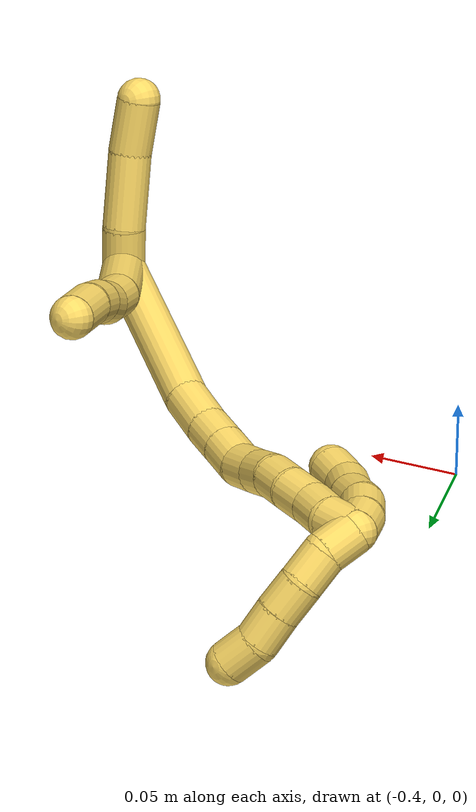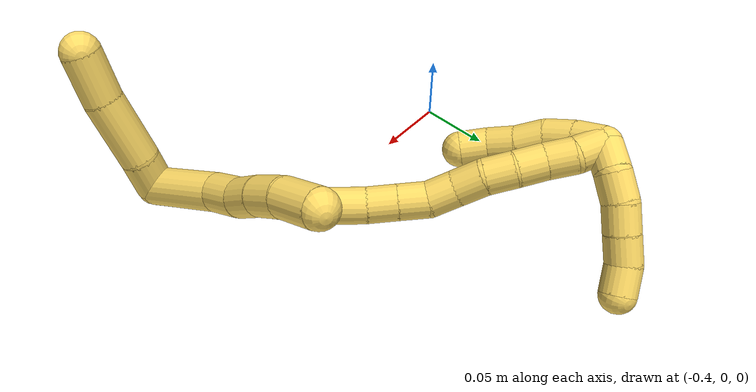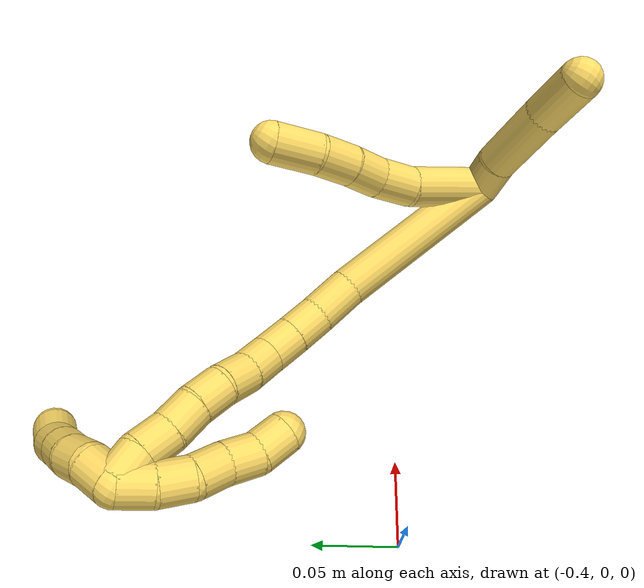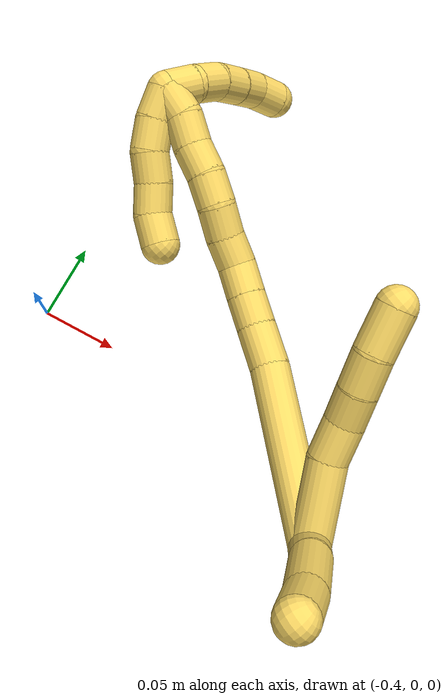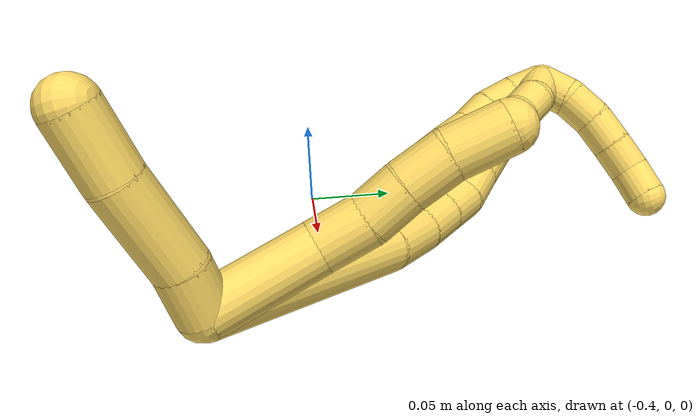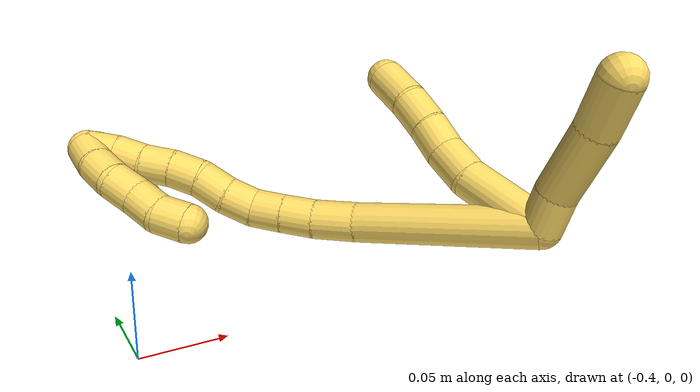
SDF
<sdf version="1.7">
 <world name="default">
  <model name="5">
   <static>0</static>
   <link name="5">
    <collision name="collision-cylinder-e_1_2_8">
     <pose>-0.01249 0.01104 0.020462 -0.494801 -0.492971 0.126926</pose>
     <geometry><cylinder><radius>0.0125</radius><length>0.052785</length></cylinder></geometry>
     <surface>
      <friction><ode><mu>1.16</mu><mu2>1.16</mu2><slip1>0</slip1><slip2>0</slip2></ode></friction>
      <contact><ode><kp>1e+06</kp><kd>1</kd><max_vel>0</max_vel><min_depth>0.001</min_depth></ode></contact>
     </surface>
    </collision>
    <visual name="visual-cylinder-e_1_2_8">
     <pose>-0.01249 0.01104 0.020462 -0.494801 -0.492971 0.126926</pose>
     <geometry><cylinder><radius>0.0125</radius><length>0.052785</length></cylinder></geometry>
     <material><ambient>1 0.858824 0.4 1</ambient></material>
    </visual>
    <collision name="collision-cylinder-e_2_8_9">
     <pose>-0.029753 0.024809 0.051795 -0.245873 -0.402513 0.050406</pose>
     <geometry><cylinder><radius>0.0125</radius><length>0.024365</length></cylinder></geometry>
     <surface>
      <friction><ode><mu>1.16</mu><mu2>1.16</mu2><slip1>0</slip1><slip2>0</slip2></ode></friction>
      <contact><ode><kp>1e+06</kp><kd>1</kd><max_vel>0</max_vel><min_depth>0.001</min_depth></ode></contact>
     </surface>
    </collision>
    <visual name="visual-cylinder-e_2_8_9">
     <pose>-0.029753 0.024809 0.051795 -0.245873 -0.402513 0.050406</pose>
     <geometry><cylinder><radius>0.0125</radius><length>0.024365</length></cylinder></geometry>
     <material><ambient>1 0.858824 0.4 1</ambient></material>
    </visual>
    <collision name="collision-cylinder-e_3_9_10">
     <pose>-0.040121 0.028317 0.071604 -0.086969 -0.557697 0.024914</pose>
     <geometry><cylinder><radius>0.0125</radius><length>0.021147</length></cylinder></geometry>
     <surface>
      <friction><ode><mu>1.16</mu><mu2>1.16</mu2><slip1>0</slip1><slip2>0</slip2></ode></friction>
      <contact><ode><kp>1e+06</kp><kd>1</kd><max_vel>0</max_vel><min_depth>0.001</min_depth></ode></contact>
     </surface>
    </collision>
    <visual name="visual-cylinder-e_3_9_10">
     <pose>-0.040121 0.028317 0.071604 -0.086969 -0.557697 0.024914</pose>
     <geometry><cylinder><radius>0.0125</radius><length>0.021147</length></cylinder></geometry>
     <material><ambient>1 0.858824 0.4 1</ambient></material>
    </visual>
    <collision name="collision-cylinder-e_4_10_11">
     <pose>-0.051135 0.030827 0.090438 -0.173141 -0.494584 0.043814</pose>
     <geometry><cylinder><radius>0.0125</radius><length>0.02283</length></cylinder></geometry>
     <surface>
      <friction><ode><mu>1.16</mu><mu2>1.16</mu2><slip1>0</slip1><slip2>0</slip2></ode></friction>
      <contact><ode><kp>1e+06</kp><kd>1</kd><max_vel>0</max_vel><min_depth>0.001</min_depth></ode></contact>
     </surface>
    </collision>
    <visual name="visual-cylinder-e_4_10_11">
     <pose>-0.051135 0.030827 0.090438 -0.173141 -0.494584 0.043814</pose>
     <geometry><cylinder><radius>0.0125</radius><length>0.02283</length></cylinder></geometry>
     <material><ambient>1 0.858824 0.4 1</ambient></material>
    </visual>
    <collision name="collision-cylinder-e_5_11_6">
     <pose>-0.061322 0.036363 0.113419 -0.28301 -0.336666 0.048409</pose>
     <geometry><cylinder><radius>0.0125</radius><length>0.028874</length></cylinder></geometry>
     <surface>
      <friction><ode><mu>1.16</mu><mu2>1.16</mu2><slip1>0</slip1><slip2>0</slip2></ode></friction>
      <contact><ode><kp>1e+06</kp><kd>1</kd><max_vel>0</max_vel><min_depth>0.001</min_depth></ode></contact>
     </surface>
    </collision>
    <visual name="visual-cylinder-e_5_11_6">
     <pose>-0.061322 0.036363 0.113419 -0.28301 -0.336666 0.048409</pose>
     <geometry><cylinder><radius>0.0125</radius><length>0.028874</length></cylinder></geometry>
     <material><ambient>1 0.858824 0.4 1</ambient></material>
    </visual>
    <collision name="collision-cylinder-e_1_2_12">
     <pose>-0.007261 -0.009607 0.001376 1.42855 -0.642336 -0.561627</pose>
     <geometry><cylinder><radius>0.0125</radius><length>0.024241</length></cylinder></geometry>
     <surface>
      <friction><ode><mu>1.16</mu><mu2>1.16</mu2><slip1>0</slip1><slip2>0</slip2></ode></friction>
      <contact><ode><kp>1e+06</kp><kd>1</kd><max_vel>0</max_vel><min_depth>0.001</min_depth></ode></contact>
     </surface>
    </collision>
    <visual name="visual-cylinder-e_1_2_12">
     <pose>-0.007261 -0.009607 0.001376 1.42855 -0.642336 -0.561627</pose>
     <geometry><cylinder><radius>0.0125</radius><length>0.024241</length></cylinder></geometry>
     <material><ambient>1 0.858824 0.4 1</ambient></material>
    </visual>
    <collision name="collision-cylinder-e_2_12_13">
     <pose>-0.026972 -0.037403 0.001861 1.61971 -0.599679 -0.627858</pose>
     <geometry><cylinder><radius>0.0125</radius><length>0.044119</length></cylinder></geometry>
     <surface>
      <friction><ode><mu>1.16</mu><mu2>1.16</mu2><slip1>0</slip1><slip2>0</slip2></ode></friction>
      <contact><ode><kp>1e+06</kp><kd>1</kd><max_vel>0</max_vel><min_depth>0.001</min_depth></ode></contact>
     </surface>
    </collision>
    <visual name="visual-cylinder-e_2_12_13">
     <pose>-0.026972 -0.037403 0.001861 1.61971 -0.599679 -0.627858</pose>
     <geometry><cylinder><radius>0.0125</radius><length>0.044119</length></cylinder></geometry>
     <material><ambient>1 0.858824 0.4 1</ambient></material>
    </visual>
    <collision name="collision-cylinder-e_3_13_5">
     <pose>-0.049837 -0.067488 0.000474 1.61251 -0.718675 -0.746577</pose>
     <geometry><cylinder><radius>0.0125</radius><length>0.03164</length></cylinder></geometry>
     <surface>
      <friction><ode><mu>1.16</mu><mu2>1.16</mu2><slip1>0</slip1><slip2>0</slip2></ode></friction>
      <contact><ode><kp>1e+06</kp><kd>1</kd><max_vel>0</max_vel><min_depth>0.001</min_depth></ode></contact>
     </surface>
    </collision>
    <visual name="visual-cylinder-e_3_13_5">
     <pose>-0.049837 -0.067488 0.000474 1.61251 -0.718675 -0.746577</pose>
     <geometry><cylinder><radius>0.0125</radius><length>0.03164</length></cylinder></geometry>
     <material><ambient>1 0.858824 0.4 1</ambient></material>
    </visual>
    <collision name="collision-cylinder-e_1_2_14">
     <pose>-0.021822 0.046764 0.020359 -1.16019 -0.404278 0.266996</pose>
     <geometry><cylinder><radius>0.0125</radius><length>0.110951</length></cylinder></geometry>
     <surface>
      <friction><ode><mu>1.16</mu><mu2>1.16</mu2><slip1>0</slip1><slip2>0</slip2></ode></friction>
      <contact><ode><kp>1e+06</kp><kd>1</kd><max_vel>0</max_vel><min_depth>0.001</min_depth></ode></contact>
     </surface>
    </collision>
    <visual name="visual-cylinder-e_1_2_14">
     <pose>-0.021822 0.046764 0.020359 -1.16019 -0.404278 0.266996</pose>
     <geometry><cylinder><radius>0.0125</radius><length>0.110951</length></cylinder></geometry>
     <material><ambient>1 0.858824 0.4 1</ambient></material>
    </visual>
    <collision name="collision-cylinder-e_2_14_15">
     <pose>-0.050669 0.104534 0.044887 -1.20864 -0.538186 0.376349</pose>
     <geometry><cylinder><radius>0.0125</radius><length>0.027414</length></cylinder></geometry>
     <surface>
      <friction><ode><mu>1.16</mu><mu2>1.16</mu2><slip1>0</slip1><slip2>0</slip2></ode></friction>
      <contact><ode><kp>1e+06</kp><kd>1</kd><max_vel>0</max_vel><min_depth>0.001</min_depth></ode></contact>
     </surface>
    </collision>
    <visual name="visual-cylinder-e_2_14_15">
     <pose>-0.050669 0.104534 0.044887 -1.20864 -0.538186 0.376349</pose>
     <geometry><cylinder><radius>0.0125</radius><length>0.027414</length></cylinder></geometry>
     <material><ambient>1 0.858824 0.4 1</ambient></material>
    </visual>
    <collision name="collision-cylinder-e_3_15_16">
     <pose>-0.063849 0.123202 0.052542 -1.14392 -0.631307 0.414417</pose>
     <geometry><cylinder><radius>0.0125</radius><length>0.020852</length></cylinder></geometry>
     <surface>
      <friction><ode><mu>1.16</mu><mu2>1.16</mu2><slip1>0</slip1><slip2>0</slip2></ode></friction>
      <contact><ode><kp>1e+06</kp><kd>1</kd><max_vel>0</max_vel><min_depth>0.001</min_depth></ode></contact>
     </surface>
    </collision>
    <visual name="visual-cylinder-e_3_15_16">
     <pose>-0.063849 0.123202 0.052542 -1.14392 -0.631307 0.414417</pose>
     <geometry><cylinder><radius>0.0125</radius><length>0.020852</length></cylinder></geometry>
     <material><ambient>1 0.858824 0.4 1</ambient></material>
    </visual>
    <collision name="collision-cylinder-e_4_16_17">
     <pose>-0.07606 0.138307 0.059645 -1.11836 -0.631787 0.403511</pose>
     <geometry><cylinder><radius>0.0125</radius><length>0.020514</length></cylinder></geometry>
     <surface>
      <friction><ode><mu>1.16</mu><mu2>1.16</mu2><slip1>0</slip1><slip2>0</slip2></ode></friction>
      <contact><ode><kp>1e+06</kp><kd>1</kd><max_vel>0</max_vel><min_depth>0.001</min_depth></ode></contact>
     </surface>
    </collision>
    <visual name="visual-cylinder-e_4_16_17">
     <pose>-0.07606 0.138307 0.059645 -1.11836 -0.631787 0.403511</pose>
     <geometry><cylinder><radius>0.0125</radius><length>0.020514</length></cylinder></geometry>
     <material><ambient>1 0.858824 0.4 1</ambient></material>
    </visual>
    <collision name="collision-cylinder-e_5_17_18">
     <pose>-0.090286 0.150542 0.066484 -0.978869 -0.955627 0.538277</pose>
     <geometry><cylinder><radius>0.0125</radius><length>0.020005</length></cylinder></geometry>
     <surface>
      <friction><ode><mu>1.16</mu><mu2>1.16</mu2><slip1>0</slip1><slip2>0</slip2></ode></friction>
      <contact><ode><kp>1e+06</kp><kd>1</kd><max_vel>0</max_vel><min_depth>0.001</min_depth></ode></contact>
     </surface>
    </collision>
    <visual name="visual-cylinder-e_5_17_18">
     <pose>-0.090286 0.150542 0.066484 -0.978869 -0.955627 0.538277</pose>
     <geometry><cylinder><radius>0.0125</radius><length>0.020005</length></cylinder></geometry>
     <material><ambient>1 0.858824 0.4 1</ambient></material>
    </visual>
    <collision name="collision-cylinder-e_6_18_19">
     <pose>-0.106748 0.15915 0.07409 -0.716465 -0.959284 0.384664</pose>
     <geometry><cylinder><radius>0.0125</radius><length>0.020256</length></cylinder></geometry>
     <surface>
      <friction><ode><mu>1.16</mu><mu2>1.16</mu2><slip1>0</slip1><slip2>0</slip2></ode></friction>
      <contact><ode><kp>1e+06</kp><kd>1</kd><max_vel>0</max_vel><min_depth>0.001</min_depth></ode></contact>
     </surface>
    </collision>
    <visual name="visual-cylinder-e_6_18_19">
     <pose>-0.106748 0.15915 0.07409 -0.716465 -0.959284 0.384664</pose>
     <geometry><cylinder><radius>0.0125</radius><length>0.020256</length></cylinder></geometry>
     <material><ambient>1 0.858824 0.4 1</ambient></material>
    </visual>
    <collision name="collision-cylinder-e_7_19_20">
     <pose>-0.122251 0.16884 0.082158 -1.0105 -0.805191 0.46268</pose>
     <geometry><cylinder><radius>0.0125</radius><length>0.020003</length></cylinder></geometry>
     <surface>
      <friction><ode><mu>1.16</mu><mu2>1.16</mu2><slip1>0</slip1><slip2>0</slip2></ode></friction>
      <contact><ode><kp>1e+06</kp><kd>1</kd><max_vel>0</max_vel><min_depth>0.001</min_depth></ode></contact>
     </surface>
    </collision>
    <visual name="visual-cylinder-e_7_19_20">
     <pose>-0.122251 0.16884 0.082158 -1.0105 -0.805191 0.46268</pose>
     <geometry><cylinder><radius>0.0125</radius><length>0.020003</length></cylinder></geometry>
     <material><ambient>1 0.858824 0.4 1</ambient></material>
    </visual>
    <collision name="collision-cylinder-e_8_20_21">
     <pose>-0.136483 0.181443 0.088167 -1.23815 -0.778226 0.568468</pose>
     <geometry><cylinder><radius>0.0125</radius><length>0.020004</length></cylinder></geometry>
     <surface>
      <friction><ode><mu>1.16</mu><mu2>1.16</mu2><slip1>0</slip1><slip2>0</slip2></ode></friction>
      <contact><ode><kp>1e+06</kp><kd>1</kd><max_vel>0</max_vel><min_depth>0.001</min_depth></ode></contact>
     </surface>
    </collision>
    <visual name="visual-cylinder-e_8_20_21">
     <pose>-0.136483 0.181443 0.088167 -1.23815 -0.778226 0.568468</pose>
     <geometry><cylinder><radius>0.0125</radius><length>0.020004</length></cylinder></geometry>
     <material><ambient>1 0.858824 0.4 1</ambient></material>
    </visual>
    <collision name="collision-cylinder-e_9_21_22">
     <pose>-0.150418 0.194299 0.094329 -1.01121 -0.763363 0.437288</pose>
     <geometry><cylinder><radius>0.0125</radius><length>0.02</length></cylinder></geometry>
     <surface>
      <friction><ode><mu>1.16</mu><mu2>1.16</mu2><slip1>0</slip1><slip2>0</slip2></ode></friction>
      <contact><ode><kp>1e+06</kp><kd>1</kd><max_vel>0</max_vel><min_depth>0.001</min_depth></ode></contact>
     </surface>
    </collision>
    <visual name="visual-cylinder-e_9_21_22">
     <pose>-0.150418 0.194299 0.094329 -1.01121 -0.763363 0.437288</pose>
     <geometry><cylinder><radius>0.0125</radius><length>0.02</length></cylinder></geometry>
     <material><ambient>1 0.858824 0.4 1</ambient></material>
    </visual>
    <collision name="collision-cylinder-e_10_22_1">
     <pose>-0.16485 0.206911 0.099339 -1.39164 -0.850815 0.723485</pose>
     <geometry><cylinder><radius>0.0125</radius><length>0.020001</length></cylinder></geometry>
     <surface>
      <friction><ode><mu>1.16</mu><mu2>1.16</mu2><slip1>0</slip1><slip2>0</slip2></ode></friction>
      <contact><ode><kp>1e+06</kp><kd>1</kd><max_vel>0</max_vel><min_depth>0.001</min_depth></ode></contact>
     </surface>
    </collision>
    <visual name="visual-cylinder-e_10_22_1">
     <pose>-0.16485 0.206911 0.099339 -1.39164 -0.850815 0.723485</pose>
     <geometry><cylinder><radius>0.0125</radius><length>0.020001</length></cylinder></geometry>
     <material><ambient>1 0.858824 0.4 1</ambient></material>
    </visual>
    <collision name="collision-cylinder-e_1_1_23">
     <pose>-0.169114 0.209869 0.091743 2.75896 0.331515 1.42483</pose>
     <geometry><cylinder><radius>0.0125</radius><length>0.02</length></cylinder></geometry>
     <surface>
      <friction><ode><mu>1.16</mu><mu2>1.16</mu2><slip1>0</slip1><slip2>0</slip2></ode></friction>
      <contact><ode><kp>1e+06</kp><kd>1</kd><max_vel>0</max_vel><min_depth>0.001</min_depth></ode></contact>
     </surface>
    </collision>
    <visual name="visual-cylinder-e_1_1_23">
     <pose>-0.169114 0.209869 0.091743 2.75896 0.331515 1.42483</pose>
     <geometry><cylinder><radius>0.0125</radius><length>0.02</length></cylinder></geometry>
     <material><ambient>1 0.858824 0.4 1</ambient></material>
    </visual>
    <collision name="collision-cylinder-e_2_23_24">
     <pose>-0.161165 0.2019 0.075337 2.61498 0.488581 1.49259</pose>
     <geometry><cylinder><radius>0.0125</radius><length>0.02</length></cylinder></geometry>
     <surface>
      <friction><ode><mu>1.16</mu><mu2>1.16</mu2><slip1>0</slip1><slip2>0</slip2></ode></friction>
      <contact><ode><kp>1e+06</kp><kd>1</kd><max_vel>0</max_vel><min_depth>0.001</min_depth></ode></contact>
     </surface>
    </collision>
    <visual name="visual-cylinder-e_2_23_24">
     <pose>-0.161165 0.2019 0.075337 2.61498 0.488581 1.49259</pose>
     <geometry><cylinder><radius>0.0125</radius><length>0.02</length></cylinder></geometry>
     <material><ambient>1 0.858824 0.4 1</ambient></material>
    </visual>
    <collision name="collision-cylinder-e_3_24_25">
     <pose>-0.149404 0.193129 0.062111 2.48234 0.784864 1.76016</pose>
     <geometry><cylinder><radius>0.0125</radius><length>0.02</length></cylinder></geometry>
     <surface>
      <friction><ode><mu>1.16</mu><mu2>1.16</mu2><slip1>0</slip1><slip2>0</slip2></ode></friction>
      <contact><ode><kp>1e+06</kp><kd>1</kd><max_vel>0</max_vel><min_depth>0.001</min_depth></ode></contact>
     </surface>
    </collision>
    <visual name="visual-cylinder-e_3_24_25">
     <pose>-0.149404 0.193129 0.062111 2.48234 0.784864 1.76016</pose>
     <geometry><cylinder><radius>0.0125</radius><length>0.02</length></cylinder></geometry>
     <material><ambient>1 0.858824 0.4 1</ambient></material>
    </visual>
    <collision name="collision-cylinder-e_4_25_26">
     <pose>-0.136559 0.184198 0.049775 2.54326 0.61605 1.60185</pose>
     <geometry><cylinder><radius>0.0125</radius><length>0.02</length></cylinder></geometry>
     <surface>
      <friction><ode><mu>1.16</mu><mu2>1.16</mu2><slip1>0</slip1><slip2>0</slip2></ode></friction>
      <contact><ode><kp>1e+06</kp><kd>1</kd><max_vel>0</max_vel><min_depth>0.001</min_depth></ode></contact>
     </surface>
    </collision>
    <visual name="visual-cylinder-e_4_25_26">
     <pose>-0.136559 0.184198 0.049775 2.54326 0.61605 1.60185</pose>
     <geometry><cylinder><radius>0.0125</radius><length>0.02</length></cylinder></geometry>
     <material><ambient>1 0.858824 0.4 1</ambient></material>
    </visual>
    <collision name="collision-cylinder-e_5_26_4">
     <pose>-0.124379 0.173074 0.03898 2.12622 0.694761 1.1539</pose>
     <geometry><cylinder><radius>0.0125</radius><length>0.02</length></cylinder></geometry>
     <surface>
      <friction><ode><mu>1.16</mu><mu2>1.16</mu2><slip1>0</slip1><slip2>0</slip2></ode></friction>
      <contact><ode><kp>1e+06</kp><kd>1</kd><max_vel>0</max_vel><min_depth>0.001</min_depth></ode></contact>
     </surface>
    </collision>
    <visual name="visual-cylinder-e_5_26_4">
     <pose>-0.124379 0.173074 0.03898 2.12622 0.694761 1.1539</pose>
     <geometry><cylinder><radius>0.0125</radius><length>0.02</length></cylinder></geometry>
     <material><ambient>1 0.858824 0.4 1</ambient></material>
    </visual>
    <collision name="collision-cylinder-e_1_1_27">
     <pose>-0.166389 0.215901 0.108129 -0.31746 0.640927 -0.10616</pose>
     <geometry><cylinder><radius>0.0125</radius><length>0.02</length></cylinder></geometry>
     <surface>
      <friction><ode><mu>1.16</mu><mu2>1.16</mu2><slip1>0</slip1><slip2>0</slip2></ode></friction>
      <contact><ode><kp>1e+06</kp><kd>1</kd><max_vel>0</max_vel><min_depth>0.001</min_depth></ode></contact>
     </surface>
    </collision>
    <visual name="visual-cylinder-e_1_1_27">
     <pose>-0.166389 0.215901 0.108129 -0.31746 0.640927 -0.10616</pose>
     <geometry><cylinder><radius>0.0125</radius><length>0.02</length></cylinder></geometry>
     <material><ambient>1 0.858824 0.4 1</ambient></material>
    </visual>
    <collision name="collision-cylinder-e_2_27_28">
     <pose>-0.153589 0.223308 0.121168 -0.73519 0.750559 -0.301123</pose>
     <geometry><cylinder><radius>0.0125</radius><length>0.02</length></cylinder></geometry>
     <surface>
      <friction><ode><mu>1.16</mu><mu2>1.16</mu2><slip1>0</slip1><slip2>0</slip2></ode></friction>
      <contact><ode><kp>1e+06</kp><kd>1</kd><max_vel>0</max_vel><min_depth>0.001</min_depth></ode></contact>
     </surface>
    </collision>
    <visual name="visual-cylinder-e_2_27_28">
     <pose>-0.153589 0.223308 0.121168 -0.73519 0.750559 -0.301123</pose>
     <geometry><cylinder><radius>0.0125</radius><length>0.02</length></cylinder></geometry>
     <material><ambient>1 0.858824 0.4 1</ambient></material>
    </visual>
    <collision name="collision-cylinder-e_3_28_29">
     <pose>-0.138657 0.232708 0.130334 -0.876652 0.946146 -0.470934</pose>
     <geometry><cylinder><radius>0.0125</radius><length>0.02</length></cylinder></geometry>
     <surface>
      <friction><ode><mu>1.16</mu><mu2>1.16</mu2><slip1>0</slip1><slip2>0</slip2></ode></friction>
      <contact><ode><kp>1e+06</kp><kd>1</kd><max_vel>0</max_vel><min_depth>0.001</min_depth></ode></contact>
     </surface>
    </collision>
    <visual name="visual-cylinder-e_3_28_29">
     <pose>-0.138657 0.232708 0.130334 -0.876652 0.946146 -0.470934</pose>
     <geometry><cylinder><radius>0.0125</radius><length>0.02</length></cylinder></geometry>
     <material><ambient>1 0.858824 0.4 1</ambient></material>
    </visual>
    <collision name="collision-cylinder-e_4_29_30">
     <pose>-0.12251 0.242099 0.137461 -0.965583 0.933194 -0.516255</pose>
     <geometry><cylinder><radius>0.0125</radius><length>0.02</length></cylinder></geometry>
     <surface>
      <friction><ode><mu>1.16</mu><mu2>1.16</mu2><slip1>0</slip1><slip2>0</slip2></ode></friction>
      <contact><ode><kp>1e+06</kp><kd>1</kd><max_vel>0</max_vel><min_depth>0.001</min_depth></ode></contact>
     </surface>
    </collision>
    <visual name="visual-cylinder-e_4_29_30">
     <pose>-0.12251 0.242099 0.137461 -0.965583 0.933194 -0.516255</pose>
     <geometry><cylinder><radius>0.0125</radius><length>0.02</length></cylinder></geometry>
     <material><ambient>1 0.858824 0.4 1</ambient></material>
    </visual>
    <collision name="collision-cylinder-e_5_30_3">
     <pose>-0.10525 0.24891 0.144198 -0.519453 1.17458 -0.350138</pose>
     <geometry><cylinder><radius>0.0125</radius><length>0.02</length></cylinder></geometry>
     <surface>
      <friction><ode><mu>1.16</mu><mu2>1.16</mu2><slip1>0</slip1><slip2>0</slip2></ode></friction>
      <contact><ode><kp>1e+06</kp><kd>1</kd><max_vel>0</max_vel><min_depth>0.001</min_depth></ode></contact>
     </surface>
    </collision>
    <visual name="visual-cylinder-e_5_30_3">
     <pose>-0.10525 0.24891 0.144198 -0.519453 1.17458 -0.350138</pose>
     <geometry><cylinder><radius>0.0125</radius><length>0.02</length></cylinder></geometry>
     <material><ambient>1 0.858824 0.4 1</ambient></material>
    </visual>
    <collision name="collision-sphere-3">
     <pose>-0.096024 0.250825 0.147549 0 -0 0</pose>
     <geometry><sphere><radius>0.0125</radius></sphere></geometry>
     <surface>
      <friction><ode><mu>1.16</mu><mu2>1.16</mu2><slip1>0</slip1><slip2>0</slip2></ode></friction>
      <contact><ode><kp>1e+06</kp><kd>1</kd><max_vel>0</max_vel><min_depth>0.001</min_depth></ode></contact>
     </surface>
    </collision>
    <visual name="visual-sphere-3">
     <pose>-0.096024 0.250825 0.147549 0 -0 0</pose>
     <geometry><sphere><radius>0.0125</radius></sphere></geometry>
     <material><ambient>1 0.858824 0.4 1</ambient></material>
    </visual>
    <collision name="collision-sphere-30">
     <pose>-0.114475 0.246994 0.140848 0 -0 0</pose>
     <geometry><sphere><radius>0.0125</radius></sphere></geometry>
     <surface>
      <friction><ode><mu>1.16</mu><mu2>1.16</mu2><slip1>0</slip1><slip2>0</slip2></ode></friction>
      <contact><ode><kp>1e+06</kp><kd>1</kd><max_vel>0</max_vel><min_depth>0.001</min_depth></ode></contact>
     </surface>
    </collision>
    <visual name="visual-sphere-30">
     <pose>-0.114475 0.246994 0.140848 0 -0 0</pose>
     <geometry><sphere><radius>0.0125</radius></sphere></geometry>
     <material><ambient>1 0.858824 0.4 1</ambient></material>
    </visual>
    <collision name="collision-sphere-29">
     <pose>-0.130546 0.237203 0.134075 0 -0 0</pose>
     <geometry><sphere><radius>0.0125</radius></sphere></geometry>
     <surface>
      <friction><ode><mu>1.16</mu><mu2>1.16</mu2><slip1>0</slip1><slip2>0</slip2></ode></friction>
      <contact><ode><kp>1e+06</kp><kd>1</kd><max_vel>0</max_vel><min_depth>0.001</min_depth></ode></contact>
     </surface>
    </collision>
    <visual name="visual-sphere-29">
     <pose>-0.130546 0.237203 0.134075 0 -0 0</pose>
     <geometry><sphere><radius>0.0125</radius></sphere></geometry>
     <material><ambient>1 0.858824 0.4 1</ambient></material>
    </visual>
    <collision name="collision-sphere-28">
     <pose>-0.146769 0.228213 0.126592 0 -0 0</pose>
     <geometry><sphere><radius>0.0125</radius></sphere></geometry>
     <surface>
      <friction><ode><mu>1.16</mu><mu2>1.16</mu2><slip1>0</slip1><slip2>0</slip2></ode></friction>
      <contact><ode><kp>1e+06</kp><kd>1</kd><max_vel>0</max_vel><min_depth>0.001</min_depth></ode></contact>
     </surface>
    </collision>
    <visual name="visual-sphere-28">
     <pose>-0.146769 0.228213 0.126592 0 -0 0</pose>
     <geometry><sphere><radius>0.0125</radius></sphere></geometry>
     <material><ambient>1 0.858824 0.4 1</ambient></material>
    </visual>
    <collision name="collision-sphere-27">
     <pose>-0.16041 0.218403 0.115744 0 -0 0</pose>
     <geometry><sphere><radius>0.0125</radius></sphere></geometry>
     <surface>
      <friction><ode><mu>1.16</mu><mu2>1.16</mu2><slip1>0</slip1><slip2>0</slip2></ode></friction>
      <contact><ode><kp>1e+06</kp><kd>1</kd><max_vel>0</max_vel><min_depth>0.001</min_depth></ode></contact>
     </surface>
    </collision>
    <visual name="visual-sphere-27">
     <pose>-0.16041 0.218403 0.115744 0 -0 0</pose>
     <geometry><sphere><radius>0.0125</radius></sphere></geometry>
     <material><ambient>1 0.858824 0.4 1</ambient></material>
    </visual>
    <collision name="collision-sphere-4">
     <pose>-0.117977 0.166546 0.03493 0 -0 0</pose>
     <geometry><sphere><radius>0.0125</radius></sphere></geometry>
     <surface>
      <friction><ode><mu>1.16</mu><mu2>1.16</mu2><slip1>0</slip1><slip2>0</slip2></ode></friction>
      <contact><ode><kp>1e+06</kp><kd>1</kd><max_vel>0</max_vel><min_depth>0.001</min_depth></ode></contact>
     </surface>
    </collision>
    <visual name="visual-sphere-4">
     <pose>-0.117977 0.166546 0.03493 0 -0 0</pose>
     <geometry><sphere><radius>0.0125</radius></sphere></geometry>
     <material><ambient>1 0.858824 0.4 1</ambient></material>
    </visual>
    <collision name="collision-sphere-26">
     <pose>-0.130781 0.179601 0.043031 0 -0 0</pose>
     <geometry><sphere><radius>0.0125</radius></sphere></geometry>
     <surface>
      <friction><ode><mu>1.16</mu><mu2>1.16</mu2><slip1>0</slip1><slip2>0</slip2></ode></friction>
      <contact><ode><kp>1e+06</kp><kd>1</kd><max_vel>0</max_vel><min_depth>0.001</min_depth></ode></contact>
     </surface>
    </collision>
    <visual name="visual-sphere-26">
     <pose>-0.130781 0.179601 0.043031 0 -0 0</pose>
     <geometry><sphere><radius>0.0125</radius></sphere></geometry>
     <material><ambient>1 0.858824 0.4 1</ambient></material>
    </visual>
    <collision name="collision-sphere-25">
     <pose>-0.142337 0.188795 0.056519 0 -0 0</pose>
     <geometry><sphere><radius>0.0125</radius></sphere></geometry>
     <surface>
      <friction><ode><mu>1.16</mu><mu2>1.16</mu2><slip1>0</slip1><slip2>0</slip2></ode></friction>
      <contact><ode><kp>1e+06</kp><kd>1</kd><max_vel>0</max_vel><min_depth>0.001</min_depth></ode></contact>
     </surface>
    </collision>
    <visual name="visual-sphere-25">
     <pose>-0.142337 0.188795 0.056519 0 -0 0</pose>
     <geometry><sphere><radius>0.0125</radius></sphere></geometry>
     <material><ambient>1 0.858824 0.4 1</ambient></material>
    </visual>
    <collision name="collision-sphere-24">
     <pose>-0.156472 0.197462 0.067703 0 -0 0</pose>
     <geometry><sphere><radius>0.0125</radius></sphere></geometry>
     <surface>
      <friction><ode><mu>1.16</mu><mu2>1.16</mu2><slip1>0</slip1><slip2>0</slip2></ode></friction>
      <contact><ode><kp>1e+06</kp><kd>1</kd><max_vel>0</max_vel><min_depth>0.001</min_depth></ode></contact>
     </surface>
    </collision>
    <visual name="visual-sphere-24">
     <pose>-0.156472 0.197462 0.067703 0 -0 0</pose>
     <geometry><sphere><radius>0.0125</radius></sphere></geometry>
     <material><ambient>1 0.858824 0.4 1</ambient></material>
    </visual>
    <collision name="collision-sphere-23">
     <pose>-0.165859 0.206338 0.082971 0 -0 0</pose>
     <geometry><sphere><radius>0.0125</radius></sphere></geometry>
     <surface>
      <friction><ode><mu>1.16</mu><mu2>1.16</mu2><slip1>0</slip1><slip2>0</slip2></ode></friction>
      <contact><ode><kp>1e+06</kp><kd>1</kd><max_vel>0</max_vel><min_depth>0.001</min_depth></ode></contact>
     </surface>
    </collision>
    <visual name="visual-sphere-23">
     <pose>-0.165859 0.206338 0.082971 0 -0 0</pose>
     <geometry><sphere><radius>0.0125</radius></sphere></geometry>
     <material><ambient>1 0.858824 0.4 1</ambient></material>
    </visual>
    <collision name="collision-sphere-1">
     <pose>-0.172369 0.213399 0.100514 0 -0 0</pose>
     <geometry><sphere><radius>0.0125</radius></sphere></geometry>
     <surface>
      <friction><ode><mu>1.16</mu><mu2>1.16</mu2><slip1>0</slip1><slip2>0</slip2></ode></friction>
      <contact><ode><kp>1e+06</kp><kd>1</kd><max_vel>0</max_vel><min_depth>0.001</min_depth></ode></contact>
     </surface>
    </collision>
    <visual name="visual-sphere-1">
     <pose>-0.172369 0.213399 0.100514 0 -0 0</pose>
     <geometry><sphere><radius>0.0125</radius></sphere></geometry>
     <material><ambient>1 0.858824 0.4 1</ambient></material>
    </visual>
    <collision name="collision-sphere-22">
     <pose>-0.157332 0.200422 0.098164 0 -0 0</pose>
     <geometry><sphere><radius>0.0125</radius></sphere></geometry>
     <surface>
      <friction><ode><mu>1.16</mu><mu2>1.16</mu2><slip1>0</slip1><slip2>0</slip2></ode></friction>
      <contact><ode><kp>1e+06</kp><kd>1</kd><max_vel>0</max_vel><min_depth>0.001</min_depth></ode></contact>
     </surface>
    </collision>
    <visual name="visual-sphere-22">
     <pose>-0.157332 0.200422 0.098164 0 -0 0</pose>
     <geometry><sphere><radius>0.0125</radius></sphere></geometry>
     <material><ambient>1 0.858824 0.4 1</ambient></material>
    </visual>
    <collision name="collision-sphere-21">
     <pose>-0.143504 0.188176 0.090493 0 -0 0</pose>
     <geometry><sphere><radius>0.0125</radius></sphere></geometry>
     <surface>
      <friction><ode><mu>1.16</mu><mu2>1.16</mu2><slip1>0</slip1><slip2>0</slip2></ode></friction>
      <contact><ode><kp>1e+06</kp><kd>1</kd><max_vel>0</max_vel><min_depth>0.001</min_depth></ode></contact>
     </surface>
    </collision>
    <visual name="visual-sphere-21">
     <pose>-0.143504 0.188176 0.090493 0 -0 0</pose>
     <geometry><sphere><radius>0.0125</radius></sphere></geometry>
     <material><ambient>1 0.858824 0.4 1</ambient></material>
    </visual>
    <collision name="collision-sphere-6">
     <pose>-0.066091 0.040168 0.126503 0 -0 0</pose>
     <geometry><sphere><radius>0.0125</radius></sphere></geometry>
     <surface>
      <friction><ode><mu>1.16</mu><mu2>1.16</mu2><slip1>0</slip1><slip2>0</slip2></ode></friction>
      <contact><ode><kp>1e+06</kp><kd>1</kd><max_vel>0</max_vel><min_depth>0.001</min_depth></ode></contact>
     </surface>
    </collision>
    <visual name="visual-sphere-6">
     <pose>-0.066091 0.040168 0.126503 0 -0 0</pose>
     <geometry><sphere><radius>0.0125</radius></sphere></geometry>
     <material><ambient>1 0.858824 0.4 1</ambient></material>
    </visual>
    <collision name="collision-sphere-11">
     <pose>-0.056553 0.032558 0.100334 0 -0 0</pose>
     <geometry><sphere><radius>0.0125</radius></sphere></geometry>
     <surface>
      <friction><ode><mu>1.16</mu><mu2>1.16</mu2><slip1>0</slip1><slip2>0</slip2></ode></friction>
      <contact><ode><kp>1e+06</kp><kd>1</kd><max_vel>0</max_vel><min_depth>0.001</min_depth></ode></contact>
     </surface>
    </collision>
    <visual name="visual-sphere-11">
     <pose>-0.056553 0.032558 0.100334 0 -0 0</pose>
     <geometry><sphere><radius>0.0125</radius></sphere></geometry>
     <material><ambient>1 0.858824 0.4 1</ambient></material>
    </visual>
    <collision name="collision-sphere-10">
     <pose>-0.045716 0.029096 0.080541 0 -0 0</pose>
     <geometry><sphere><radius>0.0125</radius></sphere></geometry>
     <surface>
      <friction><ode><mu>1.16</mu><mu2>1.16</mu2><slip1>0</slip1><slip2>0</slip2></ode></friction>
      <contact><ode><kp>1e+06</kp><kd>1</kd><max_vel>0</max_vel><min_depth>0.001</min_depth></ode></contact>
     </surface>
    </collision>
    <visual name="visual-sphere-10">
     <pose>-0.045716 0.029096 0.080541 0 -0 0</pose>
     <geometry><sphere><radius>0.0125</radius></sphere></geometry>
     <material><ambient>1 0.858824 0.4 1</ambient></material>
    </visual>
    <collision name="collision-sphere-9">
     <pose>-0.034525 0.027537 0.062666 0 -0 0</pose>
     <geometry><sphere><radius>0.0125</radius></sphere></geometry>
     <surface>
      <friction><ode><mu>1.16</mu><mu2>1.16</mu2><slip1>0</slip1><slip2>0</slip2></ode></friction>
      <contact><ode><kp>1e+06</kp><kd>1</kd><max_vel>0</max_vel><min_depth>0.001</min_depth></ode></contact>
     </surface>
    </collision>
    <visual name="visual-sphere-9">
     <pose>-0.034525 0.027537 0.062666 0 -0 0</pose>
     <geometry><sphere><radius>0.0125</radius></sphere></geometry>
     <material><ambient>1 0.858824 0.4 1</ambient></material>
    </visual>
    <collision name="collision-sphere-2">
     <geometry><sphere><radius>0.0125</radius></sphere></geometry>
     <surface>
      <friction><ode><mu>1.16</mu><mu2>1.16</mu2><slip1>0</slip1><slip2>0</slip2></ode></friction>
      <contact><ode><kp>1e+06</kp><kd>1</kd><max_vel>0</max_vel><min_depth>0.001</min_depth></ode></contact>
     </surface>
    </collision>
    <visual name="visual-sphere-2">
     <geometry><sphere><radius>0.0125</radius></sphere></geometry>
     <material><ambient>1 0.858824 0.4 1</ambient></material>
    </visual>
    <collision name="collision-sphere-19">
     <pose>-0.11504 0.162969 0.078475 0 -0 0</pose>
     <geometry><sphere><radius>0.0125</radius></sphere></geometry>
     <surface>
      <friction><ode><mu>1.16</mu><mu2>1.16</mu2><slip1>0</slip1><slip2>0</slip2></ode></friction>
      <contact><ode><kp>1e+06</kp><kd>1</kd><max_vel>0</max_vel><min_depth>0.001</min_depth></ode></contact>
     </surface>
    </collision>
    <visual name="visual-sphere-19">
     <pose>-0.11504 0.162969 0.078475 0 -0 0</pose>
     <geometry><sphere><radius>0.0125</radius></sphere></geometry>
     <material><ambient>1 0.858824 0.4 1</ambient></material>
    </visual>
    <collision name="collision-sphere-8">
     <pose>-0.02498 0.022081 0.040923 0 -0 0</pose>
     <geometry><sphere><radius>0.0125</radius></sphere></geometry>
     <surface>
      <friction><ode><mu>1.16</mu><mu2>1.16</mu2><slip1>0</slip1><slip2>0</slip2></ode></friction>
      <contact><ode><kp>1e+06</kp><kd>1</kd><max_vel>0</max_vel><min_depth>0.001</min_depth></ode></contact>
     </surface>
    </collision>
    <visual name="visual-sphere-8">
     <pose>-0.02498 0.022081 0.040923 0 -0 0</pose>
     <geometry><sphere><radius>0.0125</radius></sphere></geometry>
     <material><ambient>1 0.858824 0.4 1</ambient></material>
    </visual>
    <collision name="collision-sphere-12">
     <pose>-0.014522 -0.019214 0.002752 0 -0 0</pose>
     <geometry><sphere><radius>0.0125</radius></sphere></geometry>
     <surface>
      <friction><ode><mu>1.16</mu><mu2>1.16</mu2><slip1>0</slip1><slip2>0</slip2></ode></friction>
      <contact><ode><kp>1e+06</kp><kd>1</kd><max_vel>0</max_vel><min_depth>0.001</min_depth></ode></contact>
     </surface>
    </collision>
    <visual name="visual-sphere-12">
     <pose>-0.014522 -0.019214 0.002752 0 -0 0</pose>
     <geometry><sphere><radius>0.0125</radius></sphere></geometry>
     <material><ambient>1 0.858824 0.4 1</ambient></material>
    </visual>
    <collision name="collision-sphere-13">
     <pose>-0.039422 -0.055591 0.000971 0 -0 0</pose>
     <geometry><sphere><radius>0.0125</radius></sphere></geometry>
     <surface>
      <friction><ode><mu>1.16</mu><mu2>1.16</mu2><slip1>0</slip1><slip2>0</slip2></ode></friction>
      <contact><ode><kp>1e+06</kp><kd>1</kd><max_vel>0</max_vel><min_depth>0.001</min_depth></ode></contact>
     </surface>
    </collision>
    <visual name="visual-sphere-13">
     <pose>-0.039422 -0.055591 0.000971 0 -0 0</pose>
     <geometry><sphere><radius>0.0125</radius></sphere></geometry>
     <material><ambient>1 0.858824 0.4 1</ambient></material>
    </visual>
    <collision name="collision-sphere-5">
     <pose>-0.060253 -0.079385 -2.2e-05 0 -0 0</pose>
     <geometry><sphere><radius>0.0125</radius></sphere></geometry>
     <surface>
      <friction><ode><mu>1.16</mu><mu2>1.16</mu2><slip1>0</slip1><slip2>0</slip2></ode></friction>
      <contact><ode><kp>1e+06</kp><kd>1</kd><max_vel>0</max_vel><min_depth>0.001</min_depth></ode></contact>
     </surface>
    </collision>
    <visual name="visual-sphere-5">
     <pose>-0.060253 -0.079385 -2.2e-05 0 -0 0</pose>
     <geometry><sphere><radius>0.0125</radius></sphere></geometry>
     <material><ambient>1 0.858824 0.4 1</ambient></material>
    </visual>
    <collision name="collision-sphere-14">
     <pose>-0.043643 0.093528 0.040718 0 -0 0</pose>
     <geometry><sphere><radius>0.0125</radius></sphere></geometry>
     <surface>
      <friction><ode><mu>1.16</mu><mu2>1.16</mu2><slip1>0</slip1><slip2>0</slip2></ode></friction>
      <contact><ode><kp>1e+06</kp><kd>1</kd><max_vel>0</max_vel><min_depth>0.001</min_depth></ode></contact>
     </surface>
    </collision>
    <visual name="visual-sphere-14">
     <pose>-0.043643 0.093528 0.040718 0 -0 0</pose>
     <geometry><sphere><radius>0.0125</radius></sphere></geometry>
     <material><ambient>1 0.858824 0.4 1</ambient></material>
    </visual>
    <collision name="collision-sphere-15">
     <pose>-0.057695 0.11554 0.049057 0 -0 0</pose>
     <geometry><sphere><radius>0.0125</radius></sphere></geometry>
     <surface>
      <friction><ode><mu>1.16</mu><mu2>1.16</mu2><slip1>0</slip1><slip2>0</slip2></ode></friction>
      <contact><ode><kp>1e+06</kp><kd>1</kd><max_vel>0</max_vel><min_depth>0.001</min_depth></ode></contact>
     </surface>
    </collision>
    <visual name="visual-sphere-15">
     <pose>-0.057695 0.11554 0.049057 0 -0 0</pose>
     <geometry><sphere><radius>0.0125</radius></sphere></geometry>
     <material><ambient>1 0.858824 0.4 1</ambient></material>
    </visual>
    <collision name="collision-sphere-16">
     <pose>-0.070002 0.130863 0.056027 0 -0 0</pose>
     <geometry><sphere><radius>0.0125</radius></sphere></geometry>
     <surface>
      <friction><ode><mu>1.16</mu><mu2>1.16</mu2><slip1>0</slip1><slip2>0</slip2></ode></friction>
      <contact><ode><kp>1e+06</kp><kd>1</kd><max_vel>0</max_vel><min_depth>0.001</min_depth></ode></contact>
     </surface>
    </collision>
    <visual name="visual-sphere-16">
     <pose>-0.070002 0.130863 0.056027 0 -0 0</pose>
     <geometry><sphere><radius>0.0125</radius></sphere></geometry>
     <material><ambient>1 0.858824 0.4 1</ambient></material>
    </visual>
    <collision name="collision-sphere-17">
     <pose>-0.082117 0.145751 0.063263 0 -0 0</pose>
     <geometry><sphere><radius>0.0125</radius></sphere></geometry>
     <surface>
      <friction><ode><mu>1.16</mu><mu2>1.16</mu2><slip1>0</slip1><slip2>0</slip2></ode></friction>
      <contact><ode><kp>1e+06</kp><kd>1</kd><max_vel>0</max_vel><min_depth>0.001</min_depth></ode></contact>
     </surface>
    </collision>
    <visual name="visual-sphere-17">
     <pose>-0.082117 0.145751 0.063263 0 -0 0</pose>
     <geometry><sphere><radius>0.0125</radius></sphere></geometry>
     <material><ambient>1 0.858824 0.4 1</ambient></material>
    </visual>
    <collision name="collision-sphere-18">
     <pose>-0.098455 0.155332 0.069705 0 -0 0</pose>
     <geometry><sphere><radius>0.0125</radius></sphere></geometry>
     <surface>
      <friction><ode><mu>1.16</mu><mu2>1.16</mu2><slip1>0</slip1><slip2>0</slip2></ode></friction>
      <contact><ode><kp>1e+06</kp><kd>1</kd><max_vel>0</max_vel><min_depth>0.001</min_depth></ode></contact>
     </surface>
    </collision>
    <visual name="visual-sphere-18">
     <pose>-0.098455 0.155332 0.069705 0 -0 0</pose>
     <geometry><sphere><radius>0.0125</radius></sphere></geometry>
     <material><ambient>1 0.858824 0.4 1</ambient></material>
    </visual>
    <collision name="collision-sphere-20">
     <pose>-0.129462 0.174711 0.085841 0 -0 0</pose>
     <geometry><sphere><radius>0.0125</radius></sphere></geometry>
     <surface>
      <friction><ode><mu>1.16</mu><mu2>1.16</mu2><slip1>0</slip1><slip2>0</slip2></ode></friction>
      <contact><ode><kp>1e+06</kp><kd>1</kd><max_vel>0</max_vel><min_depth>0.001</min_depth></ode></contact>
     </surface>
    </collision>
    <visual name="visual-sphere-20">
     <pose>-0.129462 0.174711 0.085841 0 -0 0</pose>
     <geometry><sphere><radius>0.0125</radius></sphere></geometry>
     <material><ambient>1 0.858824 0.4 1</ambient></material>
    </visual>
    <inertial>
     <pose>-0.078407 0.102334 0.059241 0 -0 0</pose>
     <mass>0.75</mass>
     <inertia>
      <ixx>0.000168</ixx>
      <ixy>0</ixy>
      <ixz>0</ixz>
      <iyy>0.000147</iyy>
      <iyz>0</iyz>
      <izz>-2.2e-05</izz>
     </inertia>
    </inertial>
   </link>
   <pose>-0.180516 -0.054818 0.05237 -1.07518 0.776636 -0.066243</pose>
  </model>
 </world>
</sdf>
